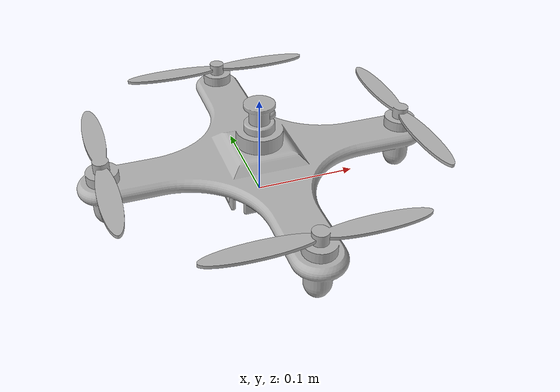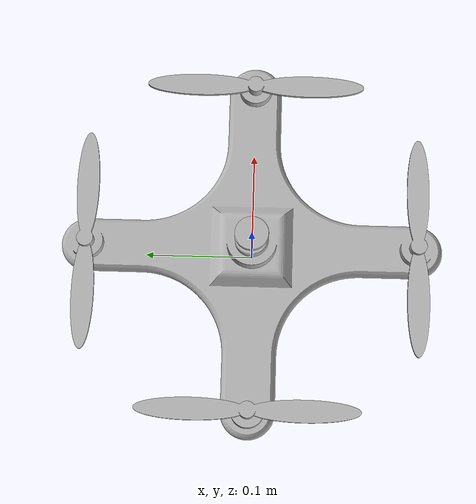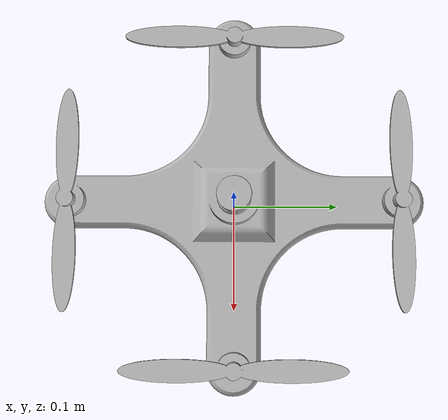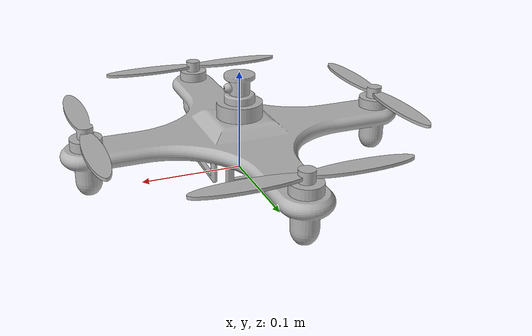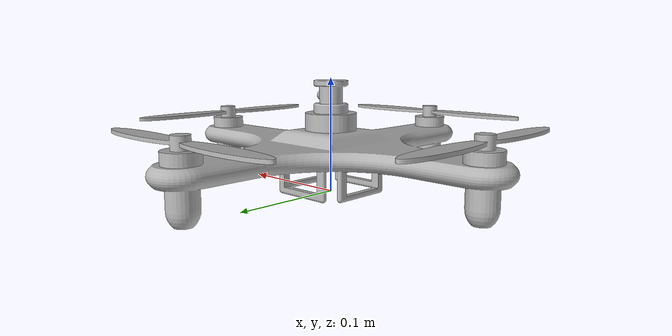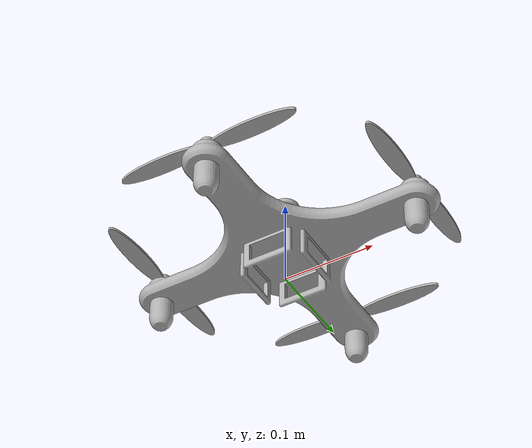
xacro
<?xml version="1.0" ?>
<robot name="drone" xmlns:xacro="http://www.ros.org/wiki/xacro">

<xacro:include filename="$(find drone_description)/urdf/materials.xacro" />
<xacro:include filename="$(find drone_description)/urdf/drone.trans" />
<xacro:include filename="$(find drone_description)/gazebo/drone_materials.gazebo" />
<xacro:include filename="$(find drone_description)/gazebo/drone_physics.gazebo" />
<xacro:include filename="$(find drone_description)/gazebo/drone_plugins.gazebo" />
<link name="base_footprint">
</link>

<joint name="base_joint" type="fixed">
  <parent link="base_footprint"/>
  <child link="base_link"/>
</joint>

<link name="base_link">
  <inertial>
    <origin rpy="0 0 0" xyz="0.0 0.0 0.0"/>
    <mass value="5.232628861646594"/>
    <inertia ixx="0.026182" ixy="1e-4" ixz="1e-4" iyy="0.026182" iyz="1e-4" izz="0.051223"/>
  </inertial>
  <visual>
    <origin rpy="0 0 0" xyz="0 0 0"/>
    <geometry>
      <mesh filename="package://drone_description/meshes/base_link.stl" scale="0.001 0.001 0.001"/>
    </geometry>
    <material name="silver_default"/>
  </visual>
  <collision>
    <origin rpy="0 0 0" xyz="0 0 0"/>
    <geometry>
      <mesh filename="package://drone_description/meshes/base_link.stl" scale="0.001 0.001 0.001"/>
    </geometry>
  </collision>
</link>

<joint name="motor_right" type="continuous">
  <origin rpy="0 0 0" xyz="0.0 -0.15 0.04"/>
  <parent link="base_link"/>
  <child link="rotor_right_1"/>
  <dynamics damping="0.7"/>
  <axis xyz="0.0 0.0 1.0"/>
</joint>

<link name="rotor_right_1">
  <inertial>
    <origin rpy="0 0 0" xyz="-1.7457429578916956e-13 0.0 0.018878199870611956"/>
    <mass value="0.09624810789637253"/>
    <inertia ixx="4e-06" ixy="1e-4" ixz="1e-4" iyy="0.000233" iyz="1e-4" izz="0.000234"/>
  </inertial>
  <visual>
    <origin rpy="0 0 0" xyz="-0.0 0.15 -0.04"/>
    <geometry>
      <mesh filename="package://drone_description/meshes/rotor_right_1.stl" scale="0.001 0.001 0.001"/>
    </geometry>
    <material name="silver_default"/>
  </visual>
  <collision>
    <origin rpy="0 0 0" xyz="-0.0 0.15 -0.04"/>
    <geometry>
      <mesh filename="package://drone_description/meshes/rotor_right_1.stl" scale="0.001 0.001 0.001"/>
    </geometry>
  </collision>
</link>

<joint name="motor_back" type="continuous">
  <origin rpy="0 0 0" xyz="-0.15 0.0 0.04"/>
  <parent link="base_link"/>
  <child link="rotor_back_1"/>
  <dynamics damping="0.7"/>
  <axis xyz="0.0 0.0 1.0"/>
</joint>

<link name="rotor_back_1">
  <inertial>
    <origin rpy="0 0 0" xyz="0.0 -1.7457429578916956e-13 0.018878199870611956"/>
    <mass value="0.09624810789637253"/>
    <inertia ixx="0.000233" ixy="1e-4" ixz="1e-4" iyy="4e-06" iyz="1e-4" izz="0.000234"/>
  </inertial>
  <visual>
    <origin rpy="0 0 0" xyz="0.15 -0.0 -0.04"/>
    <geometry>
      <mesh filename="package://drone_description/meshes/rotor_back_1.stl" scale="0.001 0.001 0.001"/>
    </geometry>
    <material name="silver_default"/>
  </visual>
  <collision>
    <origin rpy="0 0 0" xyz="0.15 -0.0 -0.04"/>
    <geometry>
      <mesh filename="package://drone_description/meshes/rotor_back_1.stl" scale="0.001 0.001 0.001"/>
    </geometry>
  </collision>
</link>

<joint name="motor_left" type="continuous">
  <origin rpy="0 0 0" xyz="0.0 0.15 0.04"/>
  <parent link="base_link"/>
  <child link="rotor_left_1"/>
  <dynamics damping="0.7"/>
  <axis xyz="0.0 0.0 1.0"/>
</joint>

<link name="rotor_left_1">
  <inertial>
    <origin rpy="0 0 0" xyz="-1.7457429578916956e-13 0.0 0.018878199870611956"/>
    <mass value="0.09624810789637253"/>
    <inertia ixx="4e-06" ixy="1e-4" ixz="1e-4" iyy="0.000233" iyz="1e-4" izz="0.000234"/>
  </inertial>
  <visual>
    <origin rpy="0 0 0" xyz="-0.0 -0.15 -0.04"/>
    <geometry>
      <mesh filename="package://drone_description/meshes/rotor_left_1.stl" scale="0.001 0.001 0.001"/>
    </geometry>
    <material name="silver_default"/>
  </visual>
  <collision>
    <origin rpy="0 0 0" xyz="-0.0 -0.15 -0.04"/>
    <geometry>
      <mesh filename="package://drone_description/meshes/rotor_left_1.stl" scale="0.001 0.001 0.001"/>
    </geometry>
  </collision>
</link>

<joint name="motor_front" type="continuous">
  <origin rpy="0 0 0" xyz="0.15 0.0 0.04"/>
  <parent link="base_link"/>
  <child link="rotor_front_1"/>
  <dynamics damping="0.7"/>
  <axis xyz="0.0 0.0 1.0"/>
</joint>

<link name="rotor_front_1">
  <inertial>
    <origin rpy="0 0 0" xyz="0.0 -1.7457429578916956e-13 0.018878199870611956"/>
    <mass value="0.09624810789637253"/>
    <inertia ixx="0.000233" ixy="1e-4" ixz="1e-4" iyy="4e-06" iyz="1e-4" izz="0.000234"/>
  </inertial>
  <visual>
    <origin rpy="0 0 0" xyz="-0.15 -0.0 -0.04"/>
    <geometry>
      <mesh filename="package://drone_description/meshes/rotor_front_1.stl" scale="0.001 0.001 0.001"/>
    </geometry>
    <material name="silver_default"/>
  </visual>
  <collision>
    <origin rpy="0 0 0" xyz="-0.15 -0.0 -0.04"/>
    <geometry>
      <mesh filename="package://drone_description/meshes/rotor_front_1.stl" scale="0.001 0.001 0.001"/>
    </geometry>
  </collision>
</link>

<joint name="lidar_joint" type="fixed">
  <origin rpy="0 0 0" xyz="0.0 0.0 0.07"/>
  <parent link="base_link"/>
  <child link="lidar_1"/>
</joint>

<link name="lidar_1">
  <inertial>
    <origin rpy="0 0 0" xyz="-0.0002811593130683333 2.4598252538209895e-05 0.013269030965666326"/>
    <mass value="0.10239819188665075"/>
    <inertia ixx="1.4e-05" ixy="1e-4" ixz="1e-4" iyy="1.4e-05" iyz="1e-4" izz="1e-05"/>
  </inertial>
  <visual>
    <origin rpy="0 0 0" xyz="-0.0 -0.0 -0.07"/>
    <geometry>
      <mesh filename="package://drone_description/meshes/lidar_1.stl" scale="0.001 0.001 0.001"/>
    </geometry>
    <material name="silver_default"/>
  </visual>
  <collision>
    <origin rpy="0 0 0" xyz="-0.0 -0.0 -0.07"/>
    <geometry>
      <mesh filename="package://drone_description/meshes/lidar_1.stl" scale="0.001 0.001 0.001"/>
    </geometry>
  </collision>
</link>

<joint name="camera_joint" type="fixed">
  <origin rpy="0 0 0" xyz="0.0 -0.0 0.014647"/>
  <parent link="lidar_1"/>
  <child link="camera_1"/>
</joint>

<link name="camera_1">
  <inertial>
    <origin rpy="0 0 0" xyz="0.0069769858851688035 -0.0006104071705326543 -4.905906650642944e-07"/>
    <mass value="0.008573825869931934"/>
    <inertia ixx="1e-4" ixy="1e-4" ixz="1e-4" iyy="1e-4" iyz="1e-4" izz="1e-4"/>
  </inertial>
  <visual>
    <origin rpy="0 0 0" xyz="-0.0 0.0 -0.084647"/>
    <geometry>
      <mesh filename="package://drone_description/meshes/camera_1.stl" scale="0.001 0.001 0.001"/>
    </geometry>
    <material name="silver_default"/>
  </visual>
  <collision>
    <origin rpy="0 0 0" xyz="-0.0 0.0 -0.084647"/>
    <geometry>
      <mesh filename="package://drone_description/meshes/camera_1.stl" scale="0.001 0.001 0.001"/>
    </geometry>
  </collision>
</link>

</robot>

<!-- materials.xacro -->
<robot name="drone" xmlns:xacro="http://www.ros.org/wiki/xacro" >

<material name="silver_default">
  <color rgba="0.700 0.700 0.700 1.000"/>
</material>

</robot>

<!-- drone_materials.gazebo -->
<robot name="drone" xmlns:xacro="http://www.ros.org/wiki/xacro" >

<xacro:property name="body_color" value="Gazebo/Silver" />
<xacro:property name="rotor_color" value="Gazebo/Yellow" />
<xacro:property name="sensor_color" value="Gazebo/Blue" />
<xacro:property name="camera_color" value="Gazebo/Black" />

<gazebo reference="base_link">
  <material>${body_color}</material>
</gazebo>

<gazebo reference="rotor_right_1">
  <material>${rotor_color}</material>
</gazebo>

<gazebo reference="rotor_back_1">
  <material>${rotor_color}</material>
</gazebo>

<gazebo reference="rotor_left_1">
  <material>${rotor_color}</material>
</gazebo>

<gazebo reference="rotor_front_1">
  <material>${rotor_color}</material>
</gazebo>

<gazebo reference="lidar_1">
  <material>${sensor_color}</material>
</gazebo>

<gazebo reference="camera_1">
  <material>${camera_color}</material>
</gazebo>

</robot>
